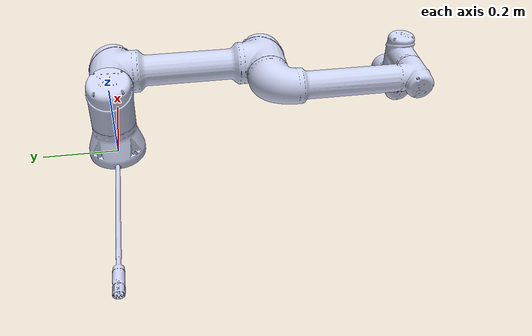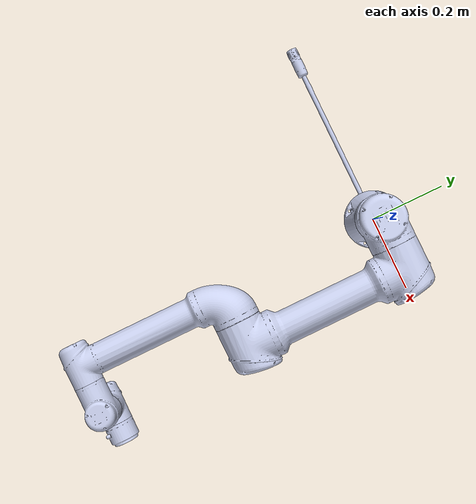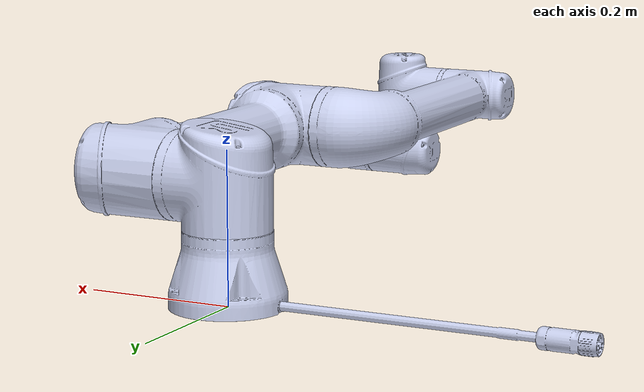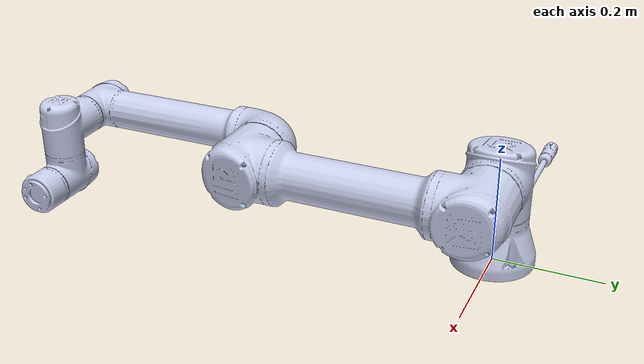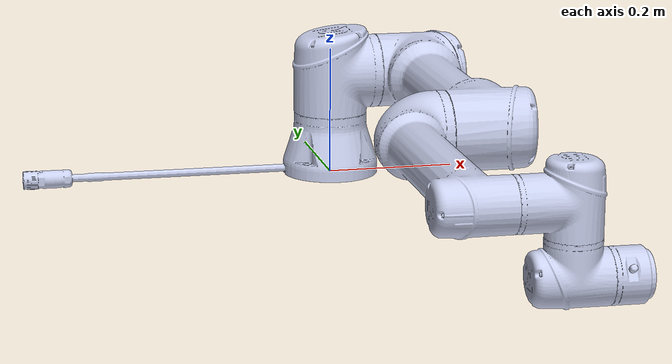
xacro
<?xml version="1.0" encoding="utf-8"?>
<robot
  name="e-Series_UR5e">
  <link
    name="base_link">
    <inertial>
      <origin
        xyz="-0.038284 1.4259E-05 0.056306"
        rpy="0 0 0" />
      <mass
        value="0.76652" />
      <inertia
        ixx="0.0012526"
        ixy="8.6453E-08"
        ixz="-2.3853E-05"
        iyy="0.0016928"
        iyz="5.6638E-07"
        izz="0.0020813" />
    </inertial>
    <visual>
      <origin
        xyz="0 0 0"
        rpy="0 0 0" />
      <geometry>
        <mesh
          filename="package://e-Series_UR5e/meshes/base_link.STL" />
      </geometry>
      <material
        name="">
        <color
          rgba="0.79216 0.81961 0.93333 1" />
      </material>
    </visual>
    <collision>
      <origin
        xyz="0 0 0"
        rpy="0 0 0" />
      <geometry>
        <mesh
          filename="package://e-Series_UR5e/meshes/base_link.STL" />
      </geometry>
    </collision>
  </link>
  <link
    name="link_1">
    <inertial>
      <origin
        xyz="-4.0402E-07 -0.010911 0.064879"
        rpy="0 0 0" />
      <mass
        value="1.6078" />
      <inertia
        ixx="0.0039245"
        ixy="-7.5616E-08"
        ixz="-4.1998E-08"
        iyy="0.0034477"
        iyz="9.4808E-05"
        izz="0.0033425" />
    </inertial>
    <visual>
      <origin
        xyz="0 0 0"
        rpy="0 0 0" />
      <geometry>
        <mesh
          filename="package://e-Series_UR5e/meshes/link_1.STL" />
      </geometry>
      <material
        name="">
        <color
          rgba="0.79216 0.81961 0.93333 1" />
      </material>
    </visual>
    <collision>
      <origin
        xyz="0 0 0"
        rpy="0 0 0" />
      <geometry>
        <mesh
          filename="package://e-Series_UR5e/meshes/link_1.STL" />
      </geometry>
    </collision>
  </link>
  <joint
    name="joint_1"
    type="continuous">
    <origin
      xyz="0 0 0.097739"
      rpy="0 0 1.5708" />
    <parent
      link="base_link" />
    <child
      link="link_1" />
    <axis
      xyz="0 0 1" />
  </joint>
  <link
    name="link_2">
    <inertial>
      <origin
        xyz="-0.2124896632942 -2.7566573778115E-06 0.0644633946441775"
        rpy="0 0 0" />
      <mass
        value="3.48194894188692" />
      <inertia
        ixx="0.00741838999556194"
        ixy="4.28837545739731E-06"
        ixz="7.87302897203472E-07"
        iyy="0.141429657593064"
        iyz="1.83888022876909E-07"
        izz="0.140265210675503" />
    </inertial>
    <visual>
      <origin
        xyz="0 0 0"
        rpy="0 0 0" />
      <geometry>
        <mesh
          filename="package://e-Series_UR5e/meshes/link_2.STL" />
      </geometry>
      <material
        name="">
        <color
          rgba="0.792156862745098 0.819607843137255 0.933333333333333 1" />
      </material>
    </visual>
    <collision>
      <origin
        xyz="0 0 0"
        rpy="0 0 0" />
      <geometry>
        <mesh
          filename="package://e-Series_UR5e/meshes/link_2.STL" />
      </geometry>
    </collision>
  </link>
  <joint
    name="joint_2"
    type="continuous">
    <origin
      xyz="0 -0.073446 0.064761"
      rpy="1.5708 0 0" />
    <parent
      link="link_1" />
    <child
      link="link_2" />
    <axis
      xyz="0 0 1" />
  </joint>
  <link
    name="link_3">
    <inertial>
      <origin
        xyz="-0.148140295327253 -2.18715172334294E-06 -0.0564557902972361"
        rpy="0 0 0" />
      <mass
        value="1.78719922779662" />
      <inertia
        ixx="0.00255793300921316"
        ixy="-2.05988630102884E-07"
        ixz="-0.000972879430463373"
        iyy="0.00975641611968272"
        iyz="-1.10026923503264E-07"
        izz="0.00937973947506879" />
    </inertial>
    <visual>
      <origin
        xyz="0 0 0"
        rpy="0 0 0" />
      <geometry>
        <mesh
          filename="package://e-Series_UR5e/meshes/link_3.STL" />
      </geometry>
      <material
        name="">
        <color
          rgba="0.792156862745098 0.819607843137255 0.933333333333333 1" />
      </material>
    </visual>
    <collision>
      <origin
        xyz="0 0 0"
        rpy="0 0 0" />
      <geometry>
        <mesh
          filename="package://e-Series_UR5e/meshes/link_3.STL" />
      </geometry>
    </collision>
  </link>
  <joint
    name="joint_3"
    type="continuous">
    <origin
      xyz="-0.425 0 0"
      rpy="0 0 0" />
    <parent
      link="link_2" />
    <child
      link="link_3" />
    <axis
      xyz="0 0 1" />
  </joint>
  <link
    name="link_4">
    <inertial>
      <origin
        xyz="-8.00997962913108E-06 0.00254765403459661 0.0415473672594848"
        rpy="0 0 0" />
      <mass
        value="0.658206626839737" />
      <inertia
        ixx="0.00109191688287393"
        ixy="1.19410397079711E-07"
        ixz="2.69565838819426E-07"
        iyy="0.000884746126443946"
        iyz="-2.58942779151138E-05"
        izz="0.000686112647130512" />
    </inertial>
    <visual>
      <origin
        xyz="0 0 0"
        rpy="0 0 0" />
      <geometry>
        <mesh
          filename="package://e-Series_UR5e/meshes/link_4.STL" />
      </geometry>
      <material
        name="">
        <color
          rgba="0.792156862745098 0.819607843137255 0.933333333333333 1" />
      </material>
    </visual>
    <collision>
      <origin
        xyz="0 0 0"
        rpy="0 0 0" />
      <geometry>
        <mesh
          filename="package://e-Series_UR5e/meshes/link_4.STL" />
      </geometry>
    </collision>
  </link>
  <joint
    name="joint_4"
    type="continuous">
    <origin
      xyz="-0.3922 0 0"
      rpy="0 0 0" />
    <parent
      link="link_3" />
    <child
      link="link_4" />
    <axis
      xyz="0 0 1" />
  </joint>
  <link
    name="link_5">
    <inertial>
      <origin
        xyz="5.5481109853317E-05 -0.00311021342395343 0.0781058578879969"
        rpy="0 0 0" />
      <mass
        value="0.538720215182785" />
      <inertia
        ixx="0.000698087208344803"
        ixy="3.21197044276753E-06"
        ixz="-3.29030595086075E-07"
        iyy="0.000491809143471576"
        iyz="7.55035125846897E-06"
        izz="0.000601190452282659" />
    </inertial>
    <visual>
      <origin
        xyz="0 0 0"
        rpy="0 0 0" />
      <geometry>
        <mesh
          filename="package://e-Series_UR5e/meshes/link_5.STL" />
      </geometry>
      <material
        name="">
        <color
          rgba="0.792156862745098 0.819607843137255 0.933333333333333 1" />
      </material>
    </visual>
    <collision>
      <origin
        xyz="0 0 0"
        rpy="0 0 0" />
      <geometry>
        <mesh
          filename="package://e-Series_UR5e/meshes/link_5.STL" />
      </geometry>
    </collision>
  </link>
  <joint
    name="joint_5"
    type="continuous">
    <origin
      xyz="0 -0.014043 0.059854"
      rpy="1.5708 0 0" />
    <parent
      link="link_4" />
    <child
      link="link_5" />
    <axis
      xyz="0 0 1" />
  </joint>
  <link
    name="tool0">
    <inertial>
      <origin
        xyz="-2.20230278458189E-09 1.80038318347009E-05 0.025011728835113"
        rpy="0 0 0" />
      <mass
        value="0.218934443014081" />
      <inertia
        ixx="0.000120675783994229"
        ixy="2.16459497438578E-09"
        ixz="-4.49238950576077E-13"
        iyy="0.000121384699989552"
        iyz="1.61072230595421E-07"
        izz="0.000150863873550317" />
    </inertial>
    <visual>
      <origin
        xyz="0 0 0"
        rpy="0 0 0" />
      <geometry>
        <mesh
          filename="package://e-Series_UR5e/meshes/tool0.STL" />
      </geometry>
      <material
        name="">
        <color
          rgba="0.792156862745098 0.819607843137255 0.933333333333333 1" />
      </material>
    </visual>
    <collision>
      <origin
        xyz="0 0 0"
        rpy="0 0 0" />
      <geometry>
        <mesh
          filename="package://e-Series_UR5e/meshes/tool0.STL" />
      </geometry>
    </collision>
  </link>
  <joint
    name="joint_6"
    type="continuous">
    <origin
      xyz="-0.00069744 0.046307 0.085657"
      rpy="1.5708 -1.0646 -3.1265" />
    <parent
      link="link_5" />
    <child
      link="tool0" />
    <axis
      xyz="0 0 -1" />
  </joint>
</robot>
